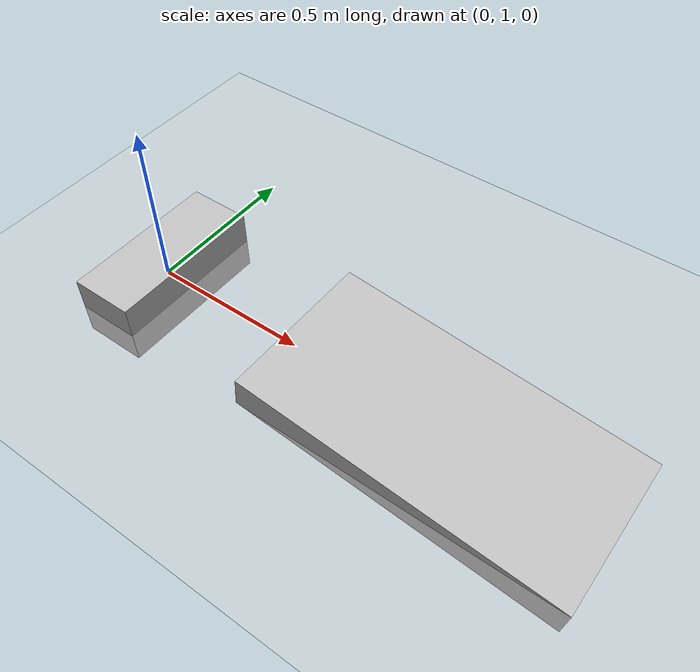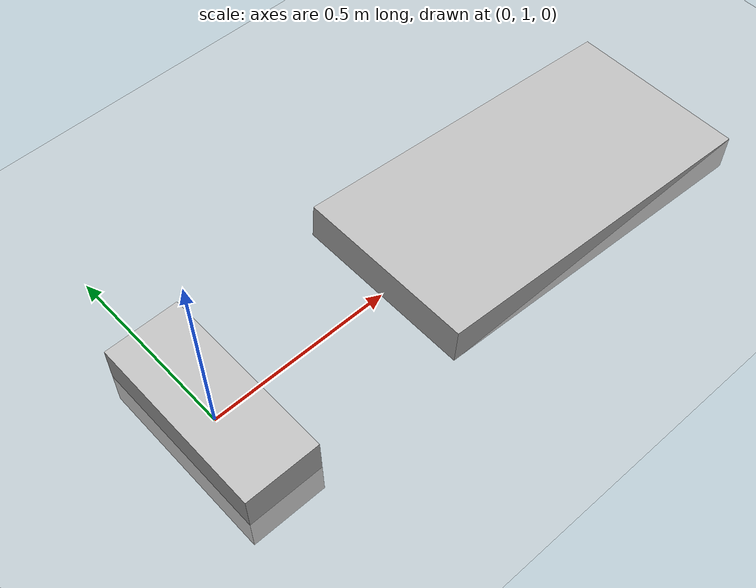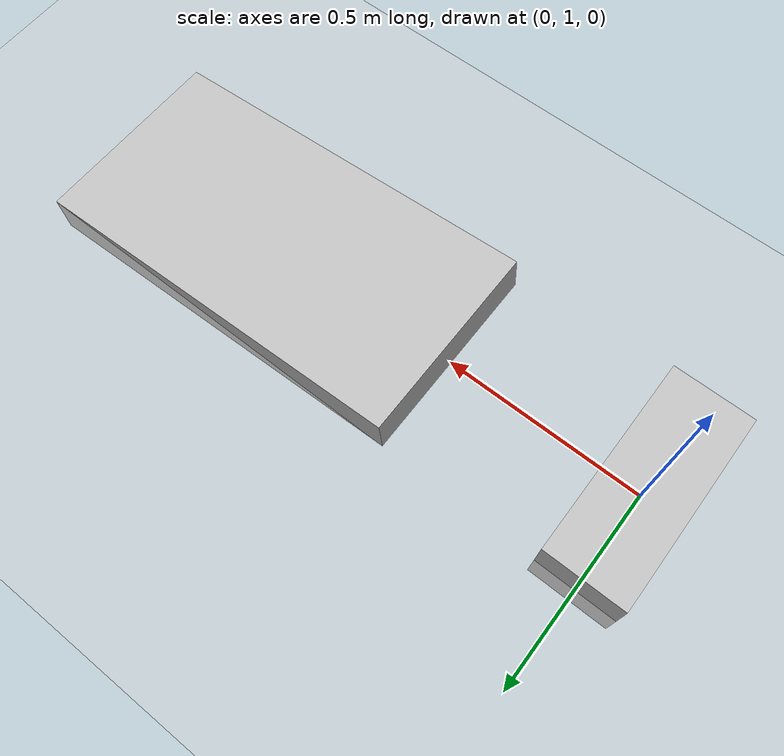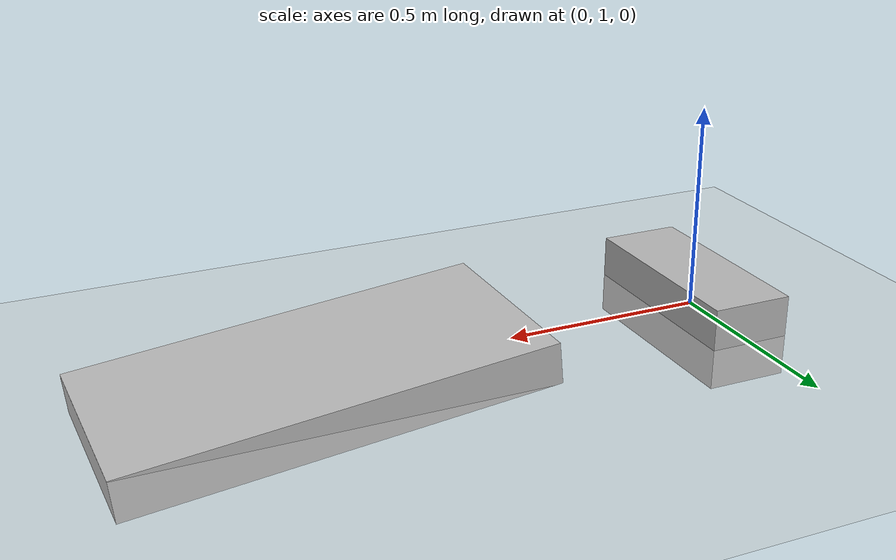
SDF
<?xml version="1.0" ?>
<sdf version="1.5">
  <world name="default">
    <include>
      <uri>model://ground_plane</uri>
    </include>
    <include>
      <uri>model://sun</uri>
    </include>

    <model name="box">
      <static>true</static>
      <pose>1 1 0 0 0.1 0</pose>
      <link name="link">
        <collision name="collision">
          <geometry>
            <box>
              <size>1 0.5 .1</size>
            </box>
          </geometry>
        </collision>
        <visual name="visual">
          <geometry>
            <box>
              <size>1 0.5 .1</size>
            </box>
          </geometry>
        </visual>
      </link>
    </model>

    <model name="stair_1">
      <static>true</static>
      <pose>0 1 0 0 0 0</pose>
      <link name="link">
        <collision name="collision">
          <geometry>
            <box>
              <size>0.2 0.5 .2</size>
            </box>
          </geometry>
        </collision>
        <visual name="visual">
          <geometry>
            <box>
              <size>0.2 0.5 .2</size>
            </box>
          </geometry>
        </visual>
      </link>
    </model>

  </world>
</sdf>
